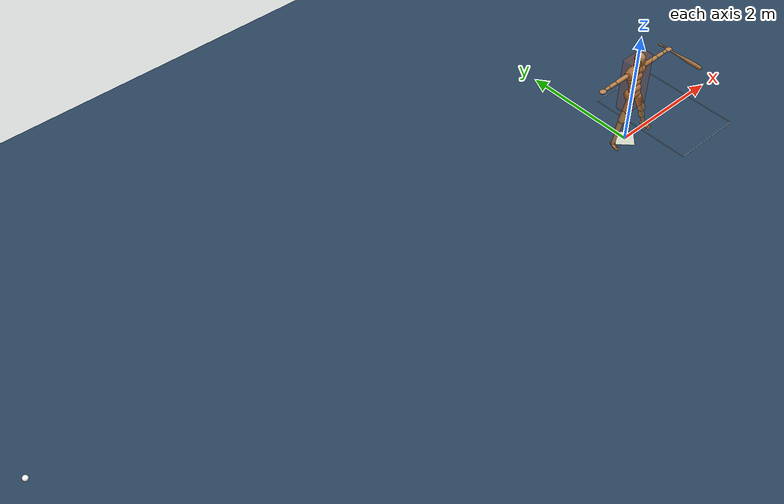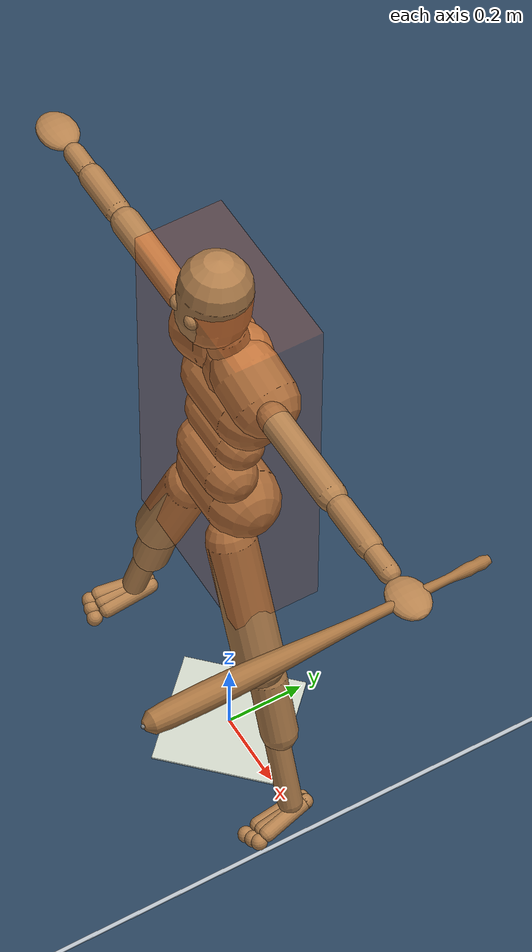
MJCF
<mujoco model="cmu_batting">
  <compiler meshdir="../meshes/" angle="degree"/>

  <!-- Inlined from dm_control/suite/common/visual.xml -->
  <visual>
    <headlight ambient=".4 .4 .4" diffuse=".8 .8 .8" specular="0.1 0.1 0.1"/>
    <map znear=".01" zfar="500"/>
    <quality shadowsize="4096"/>
    <global offwidth="1920" offheight="1080"/>
  </visual>

  <statistic extent="2" center="0 0 1"/>

  <option integrator="RK4" timestep="0.002"/>

  <default class="main">
    <joint limited="true" solimplimit="0 0.99 0.01" stiffness="0.1" armature=".01" damping="1"/>
    <geom friction="0.7" solref="0.015 1" solimp="0.95 0.99 0.003"/>
    <motor ctrllimited="true" ctrlrange="-1 1"/>
    <default class="humanoid">
      <geom type="capsule" material="self"/>
      <default class="stiff_low">
        <joint stiffness=".5" damping="4"/>
      </default>
      <default class="stiff_medium">
        <joint stiffness="10" damping="5"/>
      </default>
      <default class="stiff_high">
        <joint stiffness="30" damping="10"/>
      </default>
      <default class="touch">
        <site group="3" rgba="0 0 1 .5"/>
      </default>
    </default>
  </default>

  <asset>
    <!-- Inlined from skybox.xml -->
    <texture name="skybox" type="skybox" builtin="gradient" rgb1=".4 .6 .8" rgb2="0 0 0"
             width="800" height="800" mark="random" markrgb="1 1 1"/>
    <!-- Inlined from materials.xml -->
    <texture name="grid" type="2d" builtin="checker" rgb1=".1 .2 .3" rgb2=".2 .3 .4" width="300" height="300" mark="edge" markrgb=".2 .3 .4"/>
    <material name="grid" texture="grid" texrepeat="1 1" texuniform="true" reflectance=".2"/>
    <material name="self" rgba=".7 .5 .3 1"/>
    <material name="self_default" rgba=".7 .5 .3 1"/>
    <material name="self_highlight" rgba="0 .5 .3 1"/>
    <material name="effector" rgba=".7 .4 .2 1"/>
    <material name="effector_default" rgba=".7 .4 .2 1"/>
    <material name="effector_highlight" rgba="0 .5 .3 1"/>
    <material name="decoration" rgba=".3 .5 .7 1"/>
    <material name="eye" rgba="0 .2 1 1"/>
    <material name="target" rgba=".6 .3 .3 1"/>
    <material name="target_default" rgba=".6 .3 .3 1"/>
    <material name="target_highlight" rgba=".6 .3 .3 .4"/>
    <material name="site" rgba=".5 .5 .5 .3"/>
    <!-- Bat material -->
    <material name="bat_wood" rgba="0.55 0.35 0.17 1"/>
    <material name="bat_barrel_mat" rgba="0.75 0.55 0.27 1"/>
    <!-- Bat mesh (visual only) -->
    <mesh name="bat_mesh" file="baseball_bat.stl" scale="1 1 1"/>
    <!-- Ball material -->
    <material name="ball_mat" rgba="1 1 1 1"/>
  </asset>

  <worldbody>
    <geom name="floor" type="plane" conaffinity="1" size="100 100 .2" material="grid"/>
    <light name="tracking_light" pos="0 0 7" dir="0 0 -1" mode="trackcom"/>
    <light name="front_light" pos="2 -3 5" dir="-0.2 0.3 -0.5" directional="true" diffuse="0.5 0.5 0.5"/>
    <camera name="back" pos="0 3 2.4" xyaxes="-1 0 0 0 -1 2" mode="trackcom"/>
    <camera name="side" pos="-3 0 2.4" xyaxes="0 -1 0 1 0 2" mode="trackcom"/>
    <camera name="track" pos="0 -4 2" xyaxes="1 0 0 0 0 1" mode="trackcom"/>

    <!-- ===== CMU HUMANOID BODY ===== -->
    <body name="root" childclass="humanoid" pos="0 0 1" euler="90 0 0">
      <site name="root" size=".01" rgba="0.5 0.5 0.5 0"/>
      <freejoint name="root"/>
      <geom name="root_geom" size="0.09 0.06" pos="0 -0.05 0" quat="1 0 -1 0"/>

      <!-- Left leg -->
      <body name="lhipjoint">
        <geom name="lhipjoint" size="0.008 0.022" pos="0.051 -0.046 0.025" quat="0.5708 -0.566602 -0.594264 0"/>
        <body name="lfemur" pos="0.102 -0.092 0.05" quat="1 0 0 0.17365">
          <joint name="lfemurrz" axis="0 0 1" range="-60 70" class="stiff_medium"/>
          <joint name="lfemurry" axis="0 1 0" range="-70 70" class="stiff_medium"/>
          <joint name="lfemurrx" axis="1 0 0" range="-160 20" class="stiff_medium"/>
          <geom name="lfemur" size="0.06 0.17" pos="-.01 -0.202473 0" quat="0.7 -0.7 -0.1228 -0.07"/>
          <body name="ltibia" pos="0 -0.404945 0">
            <joint name="ltibiarx" axis="1 0 0" range="1 170" class="stiff_low"/>
            <geom name="ltibia" size="0.03 0.1825614" pos="0 -0.202846 0" quat="0.7 -0.7 -0.1228 -0.1228"/>
            <geom name="lcalf" size="0.045 0.08" pos="0 -0.1 -.01" quat="0.7 -0.7 -0.1228 -0.1228"/>
            <body name="lfoot" pos="0 -0.405693 0" quat="0.707107 -0.707107 0 0">
              <site name="lfoot_touch" type="box" pos="-.005 -.02 -0.025" size=".04 .08 .02" euler="10 0 0" class="touch"/>
              <joint name="lfootrz" axis="0 0 1" range="-70 20" class="stiff_medium"/>
              <joint name="lfootrx" axis="1 0 0" range="-45 90" class="stiff_medium"/>
              <geom name="lfoot0" size="0.02 0.06" pos="-0.02 -0.023 -0.01" euler="100 -2 0"/>
              <geom name="lfoot1" size="0.02 0.06" pos="0 -0.023 -0.01" euler="100 0 0"/>
              <geom name="lfoot2" size="0.02 0.06" pos=".01 -0.023 -0.01" euler="100 10 0"/>
              <body name="ltoes" pos="0 -0.106372 -0.0227756">
                <joint name="ltoesrx" axis="1 0 0" range="-90 20"/>
                <geom name="ltoes0" type="sphere" size="0.02" pos="-.025 -0.01 -.01"/>
                <geom name="ltoes1" type="sphere" size="0.02" pos="0 -0.005 -.01"/>
                <geom name="ltoes2" type="sphere" size="0.02" pos=".02 .001 -.01"/>
                <site name="ltoes_touch" type="capsule" pos="-.005 -.005 -.01" size="0.025 0.02" zaxis="1 .2 0" class="touch"/>
              </body>
            </body>
          </body>
        </body>
      </body>

      <!-- Right leg -->
      <body name="rhipjoint">
        <geom name="rhipjoint" size="0.008 0.022" pos="-0.051 -0.046 0.025" quat="0.574856 -0.547594 0.608014 0"/>
        <body name="rfemur" pos="-0.102 -0.092 0.05" quat="1 0 0 -0.17365">
          <joint name="rfemurrz" axis="0 0 1" range="-70 60" class="stiff_medium"/>
          <joint name="rfemurry" axis="0 1 0" range="-70 70" class="stiff_medium"/>
          <joint name="rfemurrx" axis="1 0 0" range="-160 20" class="stiff_medium"/>
          <geom name="rfemur" size="0.06 0.17" pos=".01 -0.202473 0" quat="0.7 -0.7 0.1228 0.07"/>
          <body name="rtibia" pos="0 -0.404945 0">
            <joint name="rtibiarx" axis="1 0 0" range="1 170" class="stiff_low"/>
            <geom name="rtibia" size="0.03 0.1825614" pos="0 -0.202846 0" quat="0.7 -0.7 0.1228 0.1228"/>
            <geom name="rcalf" size="0.045 0.08" pos="0 -0.1 -.01" quat="0.7 -0.7 -0.1228 -0.1228"/>
            <body name="rfoot" pos="0 -0.405693 0" quat="0.707107 -0.707107 0 0">
              <site name="rfoot_touch" type="box" pos=".005 -.02 -0.025" size=".04 .08 .02" euler="10 0 0" class="touch"/>
              <joint name="rfootrz" axis="0 0 1" range="-20 70" class="stiff_medium"/>
              <joint name="rfootrx" axis="1 0 0" range="-45 90" class="stiff_medium"/>
              <geom name="rfoot0" size="0.02 0.06" pos="0.02 -0.023 -0.01" euler="100 2 0"/>
              <geom name="rfoot1" size="0.02 0.06" pos="0 -0.023 -0.01" euler="100 0 0"/>
              <geom name="rfoot2" size="0.02 0.06" pos="-.01 -0.023 -0.01" euler="100 -10 0"/>
              <body name="rtoes" pos="0 -0.106372 -0.0227756">
                <joint name="rtoesrx" axis="1 0 0" range="-90 20"/>
                <geom name="rtoes0" type="sphere" size="0.02" pos=".025 -0.01 -.01"/>
                <geom name="rtoes1" type="sphere" size="0.02" pos="0 -0.005 -.01"/>
                <geom name="rtoes2" type="sphere" size="0.02" pos="-.02 .001 -.01"/>
                <site name="rtoes_touch" type="capsule" pos=".005 -.005 -.01" size="0.025 0.02" zaxis="1 -.2 0" class="touch"/>
              </body>
            </body>
          </body>
        </body>
      </body>

      <!-- Torso / spine / head / arms -->
      <body name="lowerback">
        <joint name="lowerbackrz" axis="0 0 1" range="-30 30" class="stiff_high"/>
        <joint name="lowerbackry" axis="0 1 0" range="-30 30" class="stiff_high"/>
        <joint name="lowerbackrx" axis="1 0 0" range="-20 45" class="stiff_high"/>
        <geom name="lowerback" size="0.065 0.055" pos="0 0.056 .03" quat="1 0 1 0"/>
        <body name="upperback" pos="0 0.1 -0.01">
          <joint name="upperbackrz" axis="0 0 1" range="-30 30" class="stiff_high"/>
          <joint name="upperbackry" axis="0 1 0" range="-30 30" class="stiff_high"/>
          <joint name="upperbackrx" axis="1 0 0" range="-20 45" class="stiff_high"/>
          <geom name="upperback" size="0.06 0.06" pos="0 0.06 0.02" quat="1 0 1 0"/>
          <body name="thorax" pos="0.000512528 0.11356 0.000936821">
            <joint name="thoraxrz" axis="0 0 1" range="-30 30" class="stiff_high"/>
            <joint name="thoraxry" axis="0 1 0" range="-30 30" class="stiff_high"/>
            <joint name="thoraxrx" axis="1 0 0" range="-20 45" class="stiff_high"/>
            <geom name="thorax" size="0.08 0.07" pos="0 0.05 0" quat="1 0 1 0"/>

            <!-- Head chain -->
            <body name="lowerneck" pos="0 0.113945 0.00468037">
              <joint name="lowerneckrz" axis="0 0 1" range="-30 30" class="stiff_medium"/>
              <joint name="lowerneckry" axis="0 1 0" range="-30 30" class="stiff_medium"/>
              <joint name="lowerneckrx" axis="1 0 0" range="-20 45" class="stiff_medium"/>
              <geom name="lowerneck" size="0.08 0.02" pos="0 0.04 -.02" quat="1 1 0 0"/>
              <body name="upperneck" pos="0 0.09 0.01">
                <joint name="upperneckrz" axis="0 0 1" range="-30 30" class="stiff_medium"/>
                <joint name="upperneckry" axis="0 1 0" range="-30 30" class="stiff_medium"/>
                <joint name="upperneckrx" axis="1 0 0" range="-20 45" class="stiff_medium"/>
                <geom name="upperneck" size="0.05 0.03" pos="0 0.05 0" quat=".8 1 0 0"/>
                <body name="head" pos="0 0.09 0">
                  <camera name="egocentric" pos="0 0 0" xyaxes="-1 0 0 0 1 0" fovy="80"/>
                  <joint name="headrz" axis="0 0 1" range="-30 30" class="stiff_medium"/>
                  <joint name="headry" axis="0 1 0" range="-30 30" class="stiff_medium"/>
                  <joint name="headrx" axis="1 0 0" range="-20 45" class="stiff_medium"/>
                  <geom name="head" size="0.085 0.035" pos="0 0.11 0.03" quat="1 .9 0 0"/>
                  <geom name="leye" type="sphere" size="0.02" pos=" .03 0.11 0.1"/>
                  <geom name="reye" type="sphere" size="0.02" pos="-.03 0.11 0.1"/>
                </body>
              </body>
            </body>

            <!-- Left arm -->
            <body name="lclavicle" pos="0 0.113945 0.00468037">
              <joint name="lclaviclerz" axis="0 0 1" range="0 20" class="stiff_high"/>
              <joint name="lclaviclery" axis="0 1 0" range="-20 10" class="stiff_high"/>
              <geom name="lclavicle" size="0.08 0.04" pos="0.09 0.05 -.01" quat="1 0 -1 -.4"/>
              <body name="lhumerus" pos="0.183 0.076 0.01" quat="0.18 0.68 -0.68 0.18">
                <joint name="lhumerusrz" axis="0 0 1" range="-90 90" class="stiff_low"/>
                <joint name="lhumerusry" axis="0 1 0" range="-90 90" class="stiff_low"/>
                <joint name="lhumerusrx" axis="1 0 0" range="-60 90" class="stiff_low"/>
                <geom name="lhumerus" size="0.035 0.124" pos="0 -0.138 0" quat="0.612 -0.612 0.35 0.35"/>
                <body name="lradius" pos="0 -0.277 0">
                  <joint name="lradiusrx" axis="1 0 0" range="-10 170" class="stiff_low"/>
                  <geom name="lradius" size="0.03 0.06" pos="0 -0.08 0" quat="0.612 -0.612 0.35 0.35"/>
                  <body name="lwrist" pos="0 -0.17 0" quat="-0.5 0 0.866 0">
                    <joint name="lwristry" axis="0 1 0" range="-180 0"/>
                    <geom name="lwrist" size="0.025 0.03" pos="0 -0.02 0" quat="0 0 -1 -1"/>
                    <body name="lhand" pos="0 -0.08 0">
                      <joint name="lhandrz" axis="0 0 1" range="-45 45"/>
                      <joint name="lhandrx" axis="1 0 0" range="-90 90"/>
                      <geom name="lhand" type="ellipsoid" size=".048 0.02 0.06" pos="0 -0.047 0" quat="0 0 -1 -1"/>

                      <!-- BAT on left hand (lead/bottom hand) -->
                      <!-- Hand -Y = toward fingertips. Z = out of palm. -->
                      <!-- Place bat at palm center, extending perpendicular to forearm -->
                      <body name="bat" pos="0.20 -0.047 0" euler="30 -90 -10">
                        <joint name="bat_grip" type="hinge" axis="0 0 1"
                               range="-30 30" damping="5" stiffness="20" armature="0.01"/>
                        <geom name="bat_visual" type="mesh" mesh="bat_mesh"
                              contype="0" conaffinity="0" rgba="0.65 0.45 0.25 1" mass="0.001"/>
                        <!-- Collision primitives matching Model 271 profile -->
                        <geom name="bat_knob" type="sphere" size="0.025"
                              pos="0 0 0.008" mass="0.03" contype="2" conaffinity="2" rgba="0 0 0 0" group="3"/>
                        <geom name="bat_handle" type="capsule" size="0.013" fromto="0 0 0.03 0 0 0.30"
                              mass="0.15" contype="2" conaffinity="2" rgba="0 0 0 0" group="3"/>
                        <geom name="bat_taper" type="capsule" size="0.022" fromto="0 0 0.28 0 0 0.55"
                              mass="0.15" contype="2" conaffinity="2" rgba="0 0 0 0" group="3"/>
                        <geom name="bat_barrel" type="capsule" size="0.032" fromto="0 0 0.55 0 0 0.79"
                              mass="0.50" contype="2" conaffinity="2" rgba="0 0 0 0" group="3"/>
                        <geom name="bat_end" type="sphere" size="0.025"
                              pos="0 0 0.83" mass="0.07" contype="2" conaffinity="2" rgba="0 0 0 0" group="3"/>
                        <site name="bat_tip" pos="0 0 0.84" size="0.005"/>
                        <site name="bat_sweet" pos="0 0 0.65" size="0.005"/>
                        <site name="bat_mid" pos="0 0 0.42" size="0.005"/>
                      </body>

                      <body name="lfingers" pos="0 -0.08 0">
                        <joint name="lfingersrx" axis="1 0 0" range="0 90"/>
                        <geom name="lfinger_placeholder" type="sphere" size="0.005" mass="0.01" rgba="0 0 0 0" contype="0" conaffinity="0"/>
                      </body>
                      <body name="lthumb" pos="-.02 -.03 0" quat="0.92388 0 0 -0.382683">
                        <joint name="lthumbrz" axis="0 0 1" range="-45 45"/>
                        <joint name="lthumbrx" axis="1 0 0" range="0 90"/>
                        <geom name="lthumb_placeholder" type="sphere" size="0.005" mass="0.01" rgba="0 0 0 0" contype="0" conaffinity="0"/>
                      </body>
                    </body>
                  </body>
                </body>
              </body>
            </body>

            <!-- Right arm -->
            <body name="rclavicle" pos="0 0.113945 0.00468037">
              <joint name="rclaviclerz" axis="0 0 1" range="-20 0" class="stiff_high"/>
              <joint name="rclaviclery" axis="0 1 0" range="-10 20" class="stiff_high"/>
              <geom name="rclavicle" size="0.08 0.04" pos="-.09 0.05 -.01" quat="1 0 -1 .4"/>
              <body name="rhumerus" pos="-0.183 0.076 0.01" quat="0.18 0.68 0.68 -0.18">
                <joint name="rhumerusrz" axis="0 0 1" range="-90 90" class="stiff_low"/>
                <joint name="rhumerusry" axis="0 1 0" range="-90 90" class="stiff_low"/>
                <joint name="rhumerusrx" axis="1 0 0" range="-60 90" class="stiff_low"/>
                <geom name="rhumerus" size="0.035 0.124" pos="0 -0.138 0" quat="0.61 -0.61 -0.35 -0.35"/>
                <body name="rradius" pos="0 -0.277 0">
                  <joint name="rradiusrx" axis="1 0 0" range="-10 170" class="stiff_low"/>
                  <geom name="rradius" size="0.03 0.06" pos="0 -0.08 0" quat="0.612 -0.612 -0.35 -0.35"/>
                  <body name="rwrist" pos="0 -0.17 0" quat="-0.5 0 -0.866 0">
                    <joint name="rwristry" axis="0 1 0" range="-180 0"/>
                    <geom name="rwrist" size="0.025 0.03" pos="0 -0.02 0" quat="0 0 1 1"/>
                    <body name="rhand" pos="0 -0.08 0">
                      <joint name="rhandrz" axis="0 0 1" range="-45 45"/>
                      <joint name="rhandrx" axis="1 0 0" range="-90 90"
                             ref="-15" stiffness="10" damping="2"/>
                      <geom name="rhand" type="ellipsoid" size=".048 0.02 .06" pos="0 -0.047 0" quat="0 0 1 1"/>

                      <body name="rfingers" pos="0 -0.08 0">
                        <joint name="rfingersrx" axis="1 0 0" range="0 90"/>
                        <geom name="rfinger_placeholder" type="sphere" size="0.005" mass="0.01" rgba="0 0 0 0" contype="0" conaffinity="0"/>
                      </body>
                      <body name="rthumb" pos=".02 -.03 0" quat="0.92388 0 0 0.382683">
                        <joint name="rthumbrz" axis="0 0 1" range="-45 45"/>
                        <joint name="rthumbrx" axis="1 0 0" range="0 90"/>
                        <geom name="rthumb_placeholder" type="sphere" size="0.005" mass="0.01" rgba="0 0 0 0" contype="0" conaffinity="0"/>
                      </body>
                    </body>
                  </body>
                </body>
              </body>
            </body>

          </body>
        </body>
      </body>
    </body>

    <!-- ===== BASEBALL (free body) ===== -->
    <body name="ball" pos="-10 0 1.2">
      <joint name="ball_free" type="free"/>
      <geom name="ball_geom" type="sphere" size="0.037" mass="0.145"
            contype="2" conaffinity="2" condim="4"
            solref="0.002 1" solimp="0.99 0.99 0.001"
            material="ball_mat"/>
      <site name="ball_center" pos="0 0 0" size="0.01"/>
    </body>
    <!-- ===== HOME PLATE + BATTER'S BOX + STRIKE ZONE (visual only) ===== -->
    <!-- Home plate at origin (0,0). Pitcher at -Y. Batter at +Y. -->
    <!-- Right-handed batter uses LEFT box (shifted in +X from plate). -->
    <!-- Box: 1.22m wide (X) x 1.83m deep (Y), 0.15m gap from plate edge. -->

    <!-- Home plate (pentagon approximated as rotated square) -->
    <!-- 17 inches = 0.432m wide -->
    <geom name="home_plate" type="box" size="0.153 0.153 0.003"
          pos="0 0 0.001" euler="0 0 45"
          rgba="1 1 0.9 0.8" contype="0" conaffinity="0"/>

    <!-- Left batter's box (right-handed hitter, +X side of plate) -->
    <!-- Inner edge: plate edge (0.216m) + gap (0.15m) = 0.366m from center -->
    <!-- Outer edge: 0.366 + 1.22m = 1.586m from center -->
    <!-- Y extent: centered on plate, 1.83m deep = -0.915 to +0.915 -->
    <geom name="box_front" type="box" size="0.61 0.005 0.002"
          pos="0.976 -0.915 0.001" rgba="1 1 1 0.7" contype="0" conaffinity="0"/>
    <geom name="box_back" type="box" size="0.61 0.005 0.002"
          pos="0.976 0.915 0.001" rgba="1 1 1 0.7" contype="0" conaffinity="0"/>
    <geom name="box_inner" type="box" size="0.005 0.915 0.002"
          pos="0.366 0.0 0.001" rgba="1 1 1 0.7" contype="0" conaffinity="0"/>
    <geom name="box_outer" type="box" size="0.005 0.915 0.002"
          pos="1.586 0.0 0.001" rgba="1 1 1 0.7" contype="0" conaffinity="0"/>

    <!-- Strike zone (transparent rectangle over home plate) -->
    <!-- Width: 0.432m (plate width), centered at X=0 -->
    <!-- Height: knees (0.53m) to mid-chest (1.22m) -->
    <!-- Depth: plate depth 0.216m in Y -->
    <!-- Strike zone scaled for 1.83m batter: knees 0.71m to mid-chest 1.64m -->
    <geom name="strike_zone" type="box" size="0.216 0.108 0.465"
          pos="0 0 1.175"
          rgba="1 0.3 0.0 0.10" contype="0" conaffinity="0"/>

  </worldbody>

  <!-- Contact exclusions from original + bat-ball contact pairs -->
  <contact>
    <exclude body1="lclavicle" body2="rclavicle"/>
    <exclude body1="lowerneck" body2="lclavicle"/>
    <exclude body1="lowerneck" body2="rclavicle"/>
    <exclude body1="upperneck" body2="lclavicle"/>
    <exclude body1="upperneck" body2="rclavicle"/>
    <!-- Bat-ball contact pairs with stiff contact -->
    <pair geom1="bat_barrel" geom2="ball_geom" condim="4" solref="0.002 1" solimp="0.99 0.99 0.001"/>
    <pair geom1="bat_taper" geom2="ball_geom" condim="4" solref="0.002 1" solimp="0.99 0.99 0.001"/>
    <pair geom1="bat_handle" geom2="ball_geom" condim="4" solref="0.002 1" solimp="0.99 0.99 0.001"/>
    <pair geom1="bat_end" geom2="ball_geom" condim="4" solref="0.002 1" solimp="0.99 0.99 0.001"/>
    <pair geom1="bat_knob" geom2="ball_geom" condim="4" solref="0.002 1" solimp="0.99 0.99 0.001"/>
  </contact>

  <!-- Right hand (top hand) position-locked to bat handle above left hand -->
  <equality>
    <connect body1="rhand" body2="bat" anchor="-0.04 0.04 0.06"
             solref="0.005 1" solimp="0.95 0.99 0.001"/>
  </equality>

  <!-- All 56 actuators from the CMU humanoid -->
  <actuator>
    <motor name="headrx" joint="headrx" gear="20"/>
    <motor name="headry" joint="headry" gear="20"/>
    <motor name="headrz" joint="headrz" gear="20"/>
    <motor name="lclaviclery" joint="lclaviclery" gear="20"/>
    <motor name="lclaviclerz" joint="lclaviclerz" gear="20"/>
    <motor name="lfemurrx" joint="lfemurrx" gear="120"/>
    <motor name="lfemurry" joint="lfemurry" gear="40"/>
    <motor name="lfemurrz" joint="lfemurrz" gear="40"/>
    <motor name="lfingersrx" joint="lfingersrx" gear="20"/>
    <motor name="lfootrx" joint="lfootrx" gear="20"/>
    <motor name="lfootrz" joint="lfootrz" gear="20"/>
    <motor name="lhandrx" joint="lhandrx" gear="20"/>
    <motor name="lhandrz" joint="lhandrz" gear="20"/>
    <motor name="lhumerusrx" joint="lhumerusrx" gear="40"/>
    <motor name="lhumerusry" joint="lhumerusry" gear="40"/>
    <motor name="lhumerusrz" joint="lhumerusrz" gear="40"/>
    <motor name="lowerbackrx" joint="lowerbackrx" gear="40"/>
    <motor name="lowerbackry" joint="lowerbackry" gear="40"/>
    <motor name="lowerbackrz" joint="lowerbackrz" gear="40"/>
    <motor name="lowerneckrx" joint="lowerneckrx" gear="20"/>
    <motor name="lowerneckry" joint="lowerneckry" gear="20"/>
    <motor name="lowerneckrz" joint="lowerneckrz" gear="20"/>
    <motor name="lradiusrx" joint="lradiusrx" gear="40"/>
    <motor name="lthumbrx" joint="lthumbrx" gear="20"/>
    <motor name="lthumbrz" joint="lthumbrz" gear="20"/>
    <motor name="ltibiarx" joint="ltibiarx" gear="80"/>
    <motor name="ltoesrx" joint="ltoesrx" gear="20"/>
    <motor name="lwristry" joint="lwristry" gear="20"/>
    <motor name="rclaviclery" joint="rclaviclery" gear="20"/>
    <motor name="rclaviclerz" joint="rclaviclerz" gear="20"/>
    <motor name="rfemurrx" joint="rfemurrx" gear="120"/>
    <motor name="rfemurry" joint="rfemurry" gear="40"/>
    <motor name="rfemurrz" joint="rfemurrz" gear="40"/>
    <motor name="rfingersrx" joint="rfingersrx" gear="20"/>
    <motor name="rfootrx" joint="rfootrx" gear="20"/>
    <motor name="rfootrz" joint="rfootrz" gear="20"/>
    <motor name="rhandrx" joint="rhandrx" gear="20"/>
    <motor name="rhandrz" joint="rhandrz" gear="20"/>
    <motor name="rhumerusrx" joint="rhumerusrx" gear="40"/>
    <motor name="rhumerusry" joint="rhumerusry" gear="40"/>
    <motor name="rhumerusrz" joint="rhumerusrz" gear="40"/>
    <motor name="rradiusrx" joint="rradiusrx" gear="40"/>
    <motor name="rthumbrx" joint="rthumbrx" gear="20"/>
    <motor name="rthumbrz" joint="rthumbrz" gear="20"/>
    <motor name="rtibiarx" joint="rtibiarx" gear="80"/>
    <motor name="rtoesrx" joint="rtoesrx" gear="20"/>
    <motor name="rwristry" joint="rwristry" gear="20"/>
    <motor name="thoraxrx" joint="thoraxrx" gear="40"/>
    <motor name="thoraxry" joint="thoraxry" gear="40"/>
    <motor name="thoraxrz" joint="thoraxrz" gear="40"/>
    <motor name="upperbackrx" joint="upperbackrx" gear="40"/>
    <motor name="upperbackry" joint="upperbackry" gear="40"/>
    <motor name="upperbackrz" joint="upperbackrz" gear="40"/>
    <motor name="upperneckrx" joint="upperneckrx" gear="20"/>
    <motor name="upperneckry" joint="upperneckry" gear="20"/>
    <motor name="upperneckrz" joint="upperneckrz" gear="20"/>
  </actuator>

  <!-- Sensors for tracking bat and ball -->
  <sensor>
    <subtreelinvel name="thorax_subtreelinvel" body="thorax"/>
    <velocimeter name="sensor_root_veloc" site="root"/>
    <gyro name="sensor_root_gyro" site="root"/>
    <accelerometer name="sensor_root_accel" site="root"/>
    <touch name="sensor_touch_ltoes" site="ltoes_touch"/>
    <touch name="sensor_touch_rtoes" site="rtoes_touch"/>
    <touch name="sensor_touch_rfoot" site="rfoot_touch"/>
    <touch name="sensor_touch_lfoot" site="lfoot_touch"/>
    <!-- Batting-specific sensors -->
    <framepos objtype="site" objname="bat_tip" name="bat_tip_pos"/>
    <framelinvel objtype="site" objname="bat_tip" name="bat_tip_vel"/>
    <framepos objtype="site" objname="ball_center" name="ball_pos"/>
    <framelinvel objtype="site" objname="ball_center" name="ball_vel"/>
  </sensor>

</mujoco>
